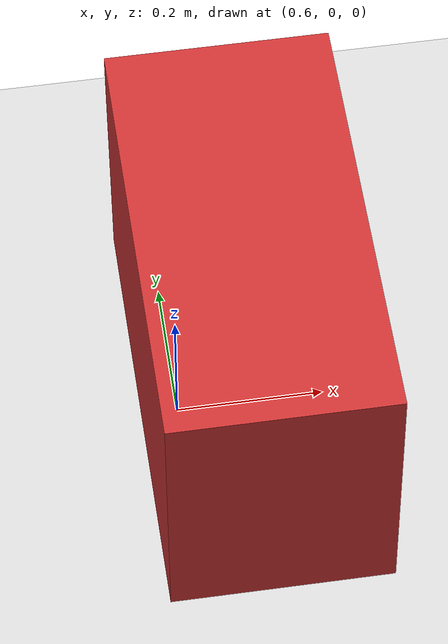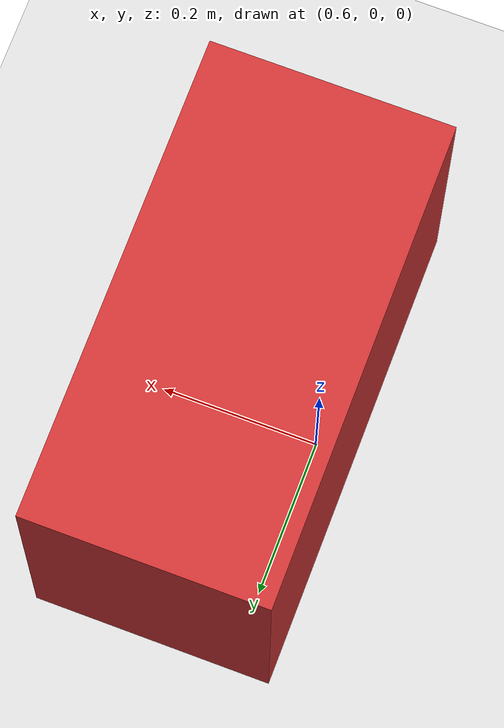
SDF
<sdf version="1.9">
  <world name="obstacle_world">
    <gravity>0 0 -9.8</gravity>

    <physics name="physics" type="ignored">
      <max_step_size>0.001</max_step_size>
      <real_time_factor>1.0</real_time_factor>
    </physics>

    <plugin filename="gz-sim-physics-system" name="gz::sim::systems::Physics"/>
    <plugin filename="gz-sim-user-commands-system" name="gz::sim::systems::UserCommands"/>
    <plugin filename="gz-sim-scene-broadcaster-system" name="gz::sim::systems::SceneBroadcaster"/>

    <scene>
      <ambient>0.7 0.7 0.7 1.0</ambient>
      <background>0.95 0.95 0.95 1.0</background>
    </scene>

    <light name="sun" type="directional">
      <cast_shadows>true</cast_shadows>
      <pose>0 0 10 0 0 0</pose>
      <diffuse>0.8 0.8 0.8 1.0</diffuse>
      <specular>0.2 0.2 0.2 1.0</specular>
      <attenuation>
        <range>1000</range>
        <constant>0.9</constant>
        <linear>0.01</linear>
        <quadratic>0.001</quadratic>
      </attenuation>
      <direction>-0.5 0.1 -0.9</direction>
    </light>

    <model name="ground_plane">
      <static>true</static>
      <link name="ground_link">
        <collision name="ground_collision">
          <geometry>
            <plane>
              <normal>0 0 1</normal>
              <size>20 20</size>
            </plane>
          </geometry>
        </collision>
        <visual name="ground_visual">
          <geometry>
            <plane>
              <normal>0 0 1</normal>
              <size>20 20</size>
            </plane>
          </geometry>
          <material>
            <ambient>0.85 0.85 0.85 1.0</ambient>
            <diffuse>0.85 0.85 0.85 1.0</diffuse>
          </material>
        </visual>
      </link>
    </model>

    <model name="box_obstacle">
      <static>true</static>
      <pose>0.7 0.0 0.2 0 0 0</pose>
      <link name="box_link">
        <collision name="collision">
          <geometry>
            <box>
              <size>0.3 0.6 0.4</size>
            </box>
          </geometry>
        </collision>
        <visual name="visual">
          <geometry>
            <box>
              <size>0.3 0.6 0.4</size>
            </box>
          </geometry>
          <material>
            <ambient>0.8 0.2 0.2 1.0</ambient>
            <diffuse>0.8 0.2 0.2 1.0</diffuse>
          </material>
        </visual>
      </link>
    </model>
  </world>
</sdf>
